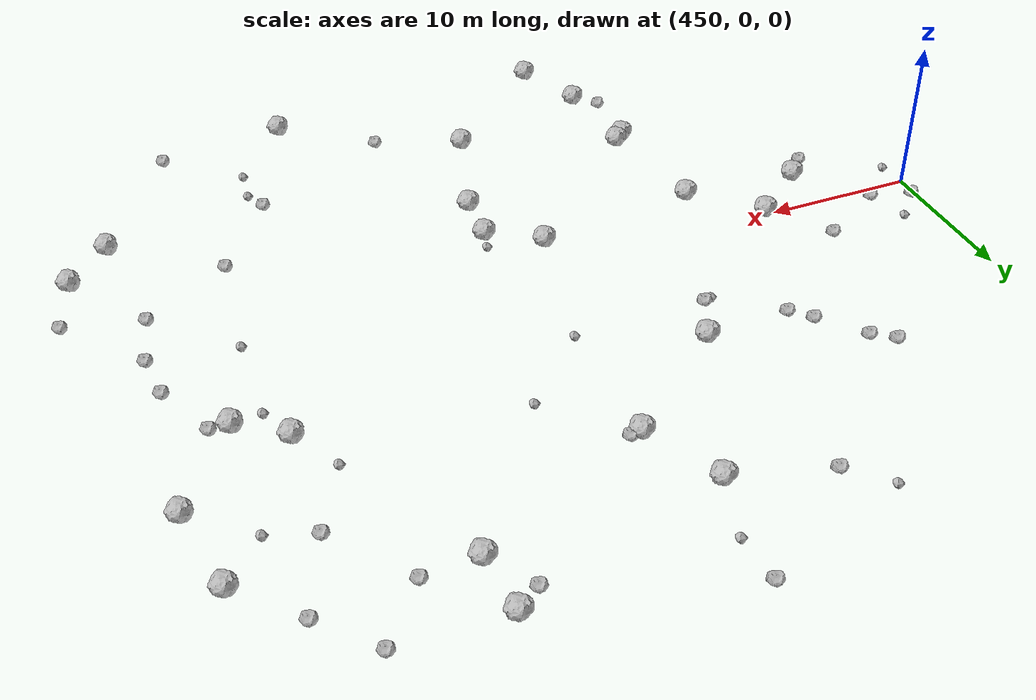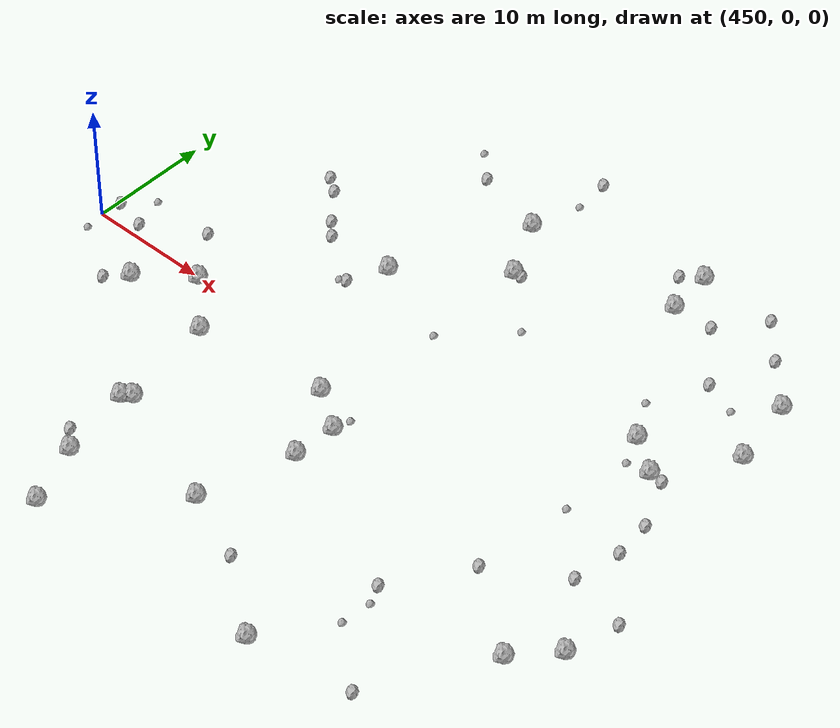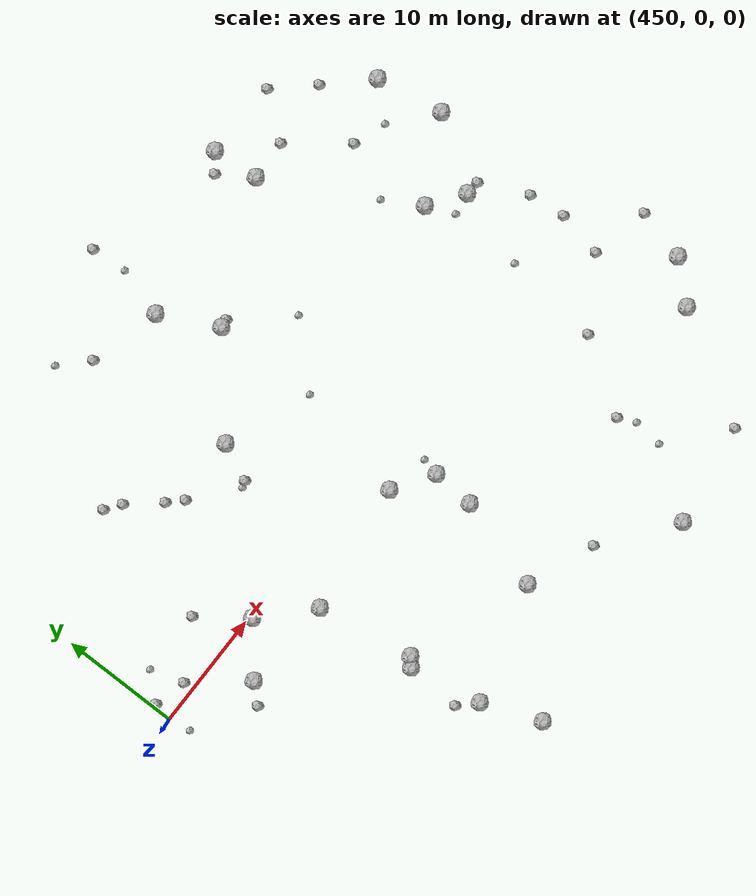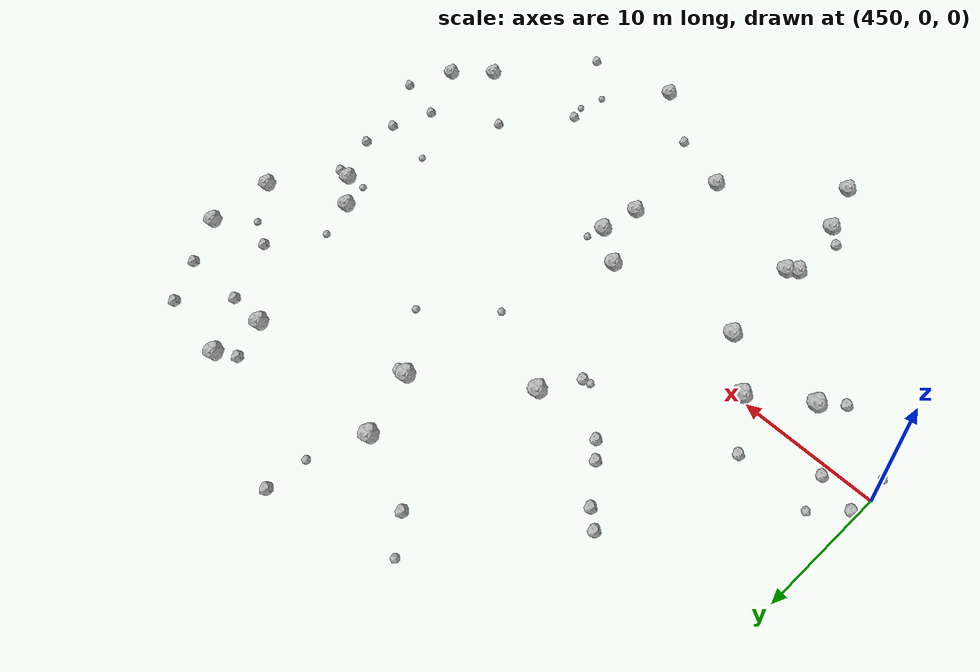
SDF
<sdf version="1.6">
 <world name="default">
  <include><uri>model://sun</uri></include>
  <model name="rock1_12_4">
   <include><uri>model://rock1</uri><pose>466.4318922974535 -18.787609087582695 0.5 0 0 0</pose></include>
  </model>
  <model name="rock1_12_5">
   <include><uri>model://rock1</uri><pose>478.76907829817935 -4.827385402316608 0.5 0 0 0</pose></include>
  </model>
  <model name="rock1_12_6">
   <include><uri>model://rock1</uri><pose>478.53294426708163 -8.395298299467836 0.5 0 0 0</pose></include>
  </model>
  <model name="rock1_12_7">
   <include><uri>model://rock1</uri><pose>475.4635089225393 -2.631839485240061 0.5 0 0 0</pose></include>
  </model>
  <model name="rock1_12_8">
   <include><uri>model://rock1</uri><pose>456.713699108143 -3.4246742184936494 0.5 0 0 0</pose></include>
  </model>
  <model name="rock1_12_9">
   <include><uri>model://rock1</uri><pose>470.3506281665271 10.006349938495788 0.5 0 0 0</pose></include>
  </model>
  <model name="rock1_12_10">
   <include><uri>model://rock1</uri><pose>477.52719535858665 15.99327206244326 0.5 0 0 0</pose></include>
  </model>
  <model name="rock1_12_11">
   <include><uri>model://rock1</uri><pose>500.91699749490186 18.302206359138857 0.5 0 0 0</pose></include>
  </model>
  <model name="rock1_12_12">
   <include><uri>model://rock1</uri><pose>501.6247565192077 -12.475311626498243 0.5 0 0 0</pose></include>
  </model>
  <model name="rock1_12_13">
   <include><uri>model://rock1</uri><pose>465.964655829668 -12.127552103637179 0.5 0 0 0</pose></include>
  </model>
  <model name="rock1_12_14">
   <include><uri>model://rock1</uri><pose>476.2662725186499 -16.007052057586705 0.5 0 0 0</pose></include>
  </model>
  <model name="rock1_12_15">
   <include><uri>model://rock1</uri><pose>465.27130873765344 -12.71705469717076 0.5 0 0 0</pose></include>
  </model>
  <model name="rock1_12_16">
   <include><uri>model://rock1</uri><pose>504.39409872108234 -9.427467131123244 0.5 0 0 0</pose></include>
  </model>
  <model name="rock1_12_17">
   <include><uri>model://rock1</uri><pose>460.6117345874776 -0.23382968421637074 0.5 0 0 0</pose></include>
  </model>
  <model name="rock1_12_18">
   <include><uri>model://rock1</uri><pose>501.9186097712467 12.626253320452555 0.5 0 0 0</pose></include>
  </model>
  <model name="rock1_12_19">
   <include><uri>model://rock1</uri><pose>475.1309864179318 20.816071124886278 0.5 0 0 0</pose></include>
  </model>
  <model name="rock1_12_20">
   <include><uri>model://rock1</uri><pose>487.831208095726 -22.775527304363337 0.5 0 0 0</pose></include>
  </model>
  <model name="rock1_12_21">
   <include><uri>model://rock1</uri><pose>495.18845568644923 9.071497227834456 0.5 0 0 0</pose></include>
  </model>
  <model name="rock1_12_22">
   <include><uri>model://rock1</uri><pose>468.32180228288854 -23.69703469928831 0.5 0 0 0</pose></include>
  </model>
  <model name="rock1_12_23">
   <include><uri>model://rock1</uri><pose>488.695132059559 21.165700423286353 0.5 0 0 0</pose></include>
  </model>
  <model name="rock1_12_24">
   <include><uri>model://rock1</uri><pose>488.36481649890305 25.05104278014536 0.5 0 0 0</pose></include>
  </model>
  <model name="rock1_12_25">
   <include><uri>model://rock1</uri><pose>464.574909612186 -4.023306344312921 0.5 0 0 0</pose></include>
  </model>
  <model name="rock1_12_26">
   <include><uri>model://rock1</uri><pose>498.0500076423266 6.993382965246127 0.5 0 0 0</pose></include>
  </model>
  <model name="rock2_12_0">
   <include><uri>model://rock2</uri><pose>499.22763586206725 6.921238159383286 0.3 0 0 0</pose></include>
  </model>
  <model name="rock2_12_1">
   <include><uri>model://rock2</uri><pose>469.07899233602313 22.520377723511494 0.3 0 0 0</pose></include>
  </model>
  <model name="rock2_12_2">
   <include><uri>model://rock2</uri><pose>461.41467376814467 13.577941889276936 0.3 0 0 0</pose></include>
  </model>
  <model name="rock2_12_3">
   <include><uri>model://rock2</uri><pose>453.1146373780765 0.9311282446560263 0.3 0 0 0</pose></include>
  </model>
  <model name="rock2_12_4">
   <include><uri>model://rock2</uri><pose>457.72401643778227 3.667959531747293 0.3 0 0 0</pose></include>
  </model>
  <model name="rock2_12_5">
   <include><uri>model://rock2</uri><pose>500.6023954259508 -4.0125370314575335 0.3 0 0 0</pose></include>
  </model>
  <model name="rock2_12_6">
   <include><uri>model://rock2</uri><pose>505.4863632171098 -5.159634242715551 0.3 0 0 0</pose></include>
  </model>
  <model name="rock2_12_7">
   <include><uri>model://rock2</uri><pose>494.83980113011484 24.83065820506765 0.3 0 0 0</pose></include>
  </model>
  <model name="rock2_12_8">
   <include><uri>model://rock2</uri><pose>478.1906137531655 16.0862682934928 0.3 0 0 0</pose></include>
  </model>
  <model name="rock2_12_9">
   <include><uri>model://rock2</uri><pose>495.0452491392459 -7.5626576113414075 0.3 0 0 0</pose></include>
  </model>
  <model name="rock2_12_10">
   <include><uri>model://rock2</uri><pose>464.75794722581827 9.802635827616939 0.3 0 0 0</pose></include>
  </model>
  <model name="rock2_12_11">
   <include><uri>model://rock2</uri><pose>450.38005549237664 1.6530994164958805 0.3 0 0 0</pose></include>
  </model>
  <model name="rock2_12_12">
   <include><uri>model://rock2</uri><pose>468.90201437499894 6.9987486326068336 0.3 0 0 0</pose></include>
  </model>
  <model name="rock2_12_13">
   <include><uri>model://rock2</uri><pose>486.8536531677789 23.9757413861919 0.3 0 0 0</pose></include>
  </model>
  <model name="rock2_12_14">
   <include><uri>model://rock2</uri><pose>501.3559706592587 -0.17537432908121176 0.3 0 0 0</pose></include>
  </model>
  <model name="rock2_12_15">
   <include><uri>model://rock2</uri><pose>501.0362899020562 2.950098988939459 0.3 0 0 0</pose></include>
  </model>
  <model name="rock2_12_16">
   <include><uri>model://rock2</uri><pose>491.18451135383054 -13.481943733876566 0.3 0 0 0</pose></include>
  </model>
  <model name="rock2_12_17">
   <include><uri>model://rock2</uri><pose>492.03907646593575 21.31022747581342 0.3 0 0 0</pose></include>
  </model>
  <model name="rock2_12_18">
   <include><uri>model://rock2</uri><pose>464.97611225179816 -17.381295239259842 0.3 0 0 0</pose></include>
  </model>
  <model name="rock2_12_19">
   <include><uri>model://rock2</uri><pose>476.1133611888009 27.982468450710854 0.3 0 0 0</pose></include>
  </model>
  <model name="rock2_12_20">
   <include><uri>model://rock2</uri><pose>455.2559954029355 -4.8951172933649225 0.3 0 0 0</pose></include>
  </model>
  <model name="rock2_12_21">
   <include><uri>model://rock2</uri><pose>481.91277386723493 -18.281965203437046 0.3 0 0 0</pose></include>
  </model>
  <model name="rock2_12_22">
   <include><uri>model://rock2</uri><pose>497.6491751166562 21.738513496810405 0.3 0 0 0</pose></include>
  </model>
  <model name="rock2_12_23">
   <include><uri>model://rock2</uri><pose>495.6332536983515 16.650410472155045 0.3 0 0 0</pose></include>
  </model>
  <model name="rock2_12_24">
   <include><uri>model://rock2</uri><pose>496.30400668673934 -21.47429214708383 0.3 0 0 0</pose></include>
  </model>
  <model name="rock2_12_25">
   <include><uri>model://rock2</uri><pose>460.11843935326897 14.53520800859274 0.3 0 0 0</pose></include>
  </model>
  <model name="rock2_12_26">
   <include><uri>model://rock2</uri><pose>463.618748064276 10.966940676861157 0.3 0 0 0</pose></include>
  </model>
  <model name="rock3_12_0">
   <include><uri>model://rock3</uri><pose>452.262742376327 3.685996551971641 0.2 0 0 0</pose></include>
  </model>
  <model name="rock3_12_1">
   <include><uri>model://rock3</uri><pose>491.82051477712866 -15.015292696207009 0.2 0 0 0</pose></include>
  </model>
  <model name="rock3_12_2">
   <include><uri>model://rock3</uri><pose>466.83910255566633 24.638921645776847 0.2 0 0 0</pose></include>
  </model>
  <model name="rock3_12_3">
   <include><uri>model://rock3</uri><pose>482.00092820188746 11.682661314269339 0.2 0 0 0</pose></include>
  </model>
  <model name="rock3_12_4">
   <include><uri>model://rock3</uri><pose>468.3167014207205 6.778450110186121 0.2 0 0 0</pose></include>
  </model>
  <model name="rock3_12_5">
   <include><uri>model://rock3</uri><pose>479.04260598756326 -3.393321512689564 0.2 0 0 0</pose></include>
  </model>
  <model name="rock3_12_6">
   <include><uri>model://rock3</uri><pose>496.13624611269665 6.702217279395427 0.2 0 0 0</pose></include>
  </model>
  <model name="rock3_12_7">
   <include><uri>model://rock3</uri><pose>495.90549151072423 0.5313779132661303 0.2 0 0 0</pose></include>
  </model>
  <model name="rock3_12_8">
   <include><uri>model://rock3</uri><pose>476.2913582745355 24.896803155743385 0.2 0 0 0</pose></include>
  </model>
  <model name="rock3_12_9">
   <include><uri>model://rock3</uri><pose>498.37923085470493 15.605702340108422 0.2 0 0 0</pose></include>
  </model>
  <model name="rock3_12_10">
   <include><uri>model://rock3</uri><pose>477.5245532147019 7.060172875460033 0.2 0 0 0</pose></include>
  </model>
  <model name="rock3_12_11">
   <include><uri>model://rock3</uri><pose>491.559532297792 -17.497453959825762 0.2 0 0 0</pose></include>
  </model>
  <model name="rock3_12_12">
   <include><uri>model://rock3</uri><pose>493.3642068833931 12.181788400518059 0.2 0 0 0</pose></include>
  </model>
  <model name="rock3_12_13">
   <include><uri>model://rock3</uri><pose>450.3415547656371 -1.8403641632021248 0.2 0 0 0</pose></include>
  </model>
 </world>
</sdf>
